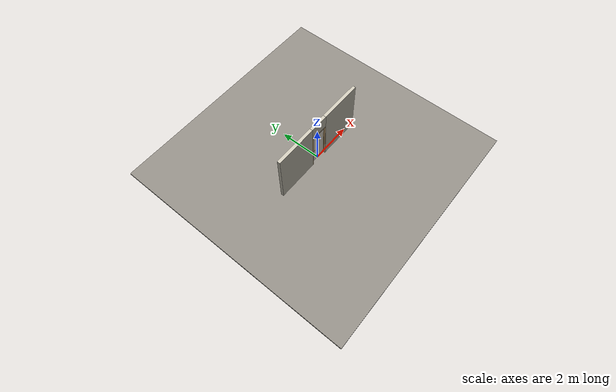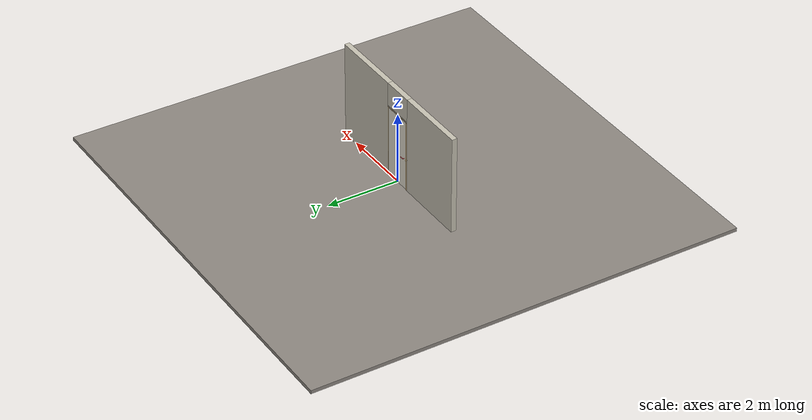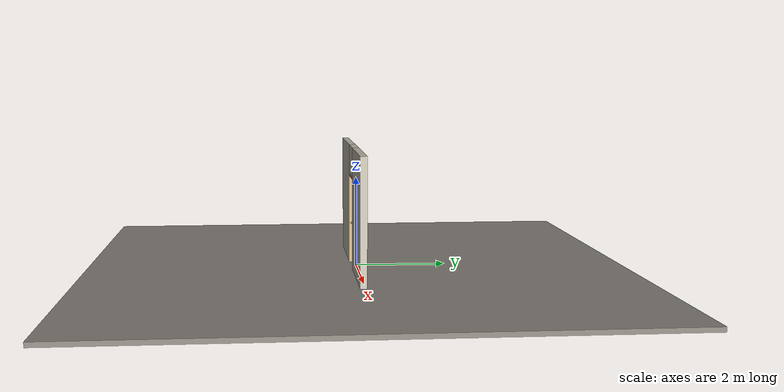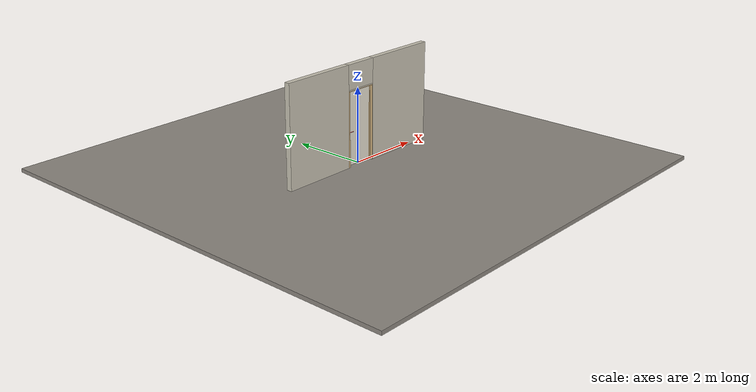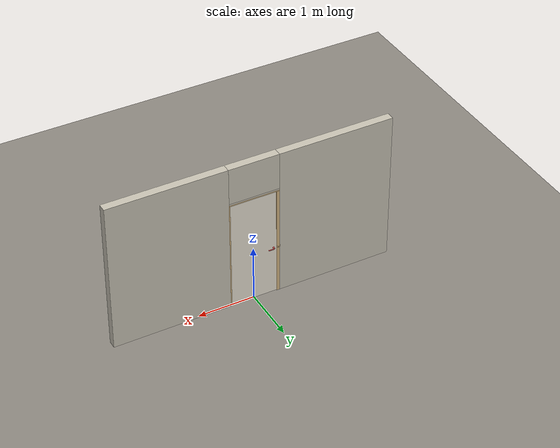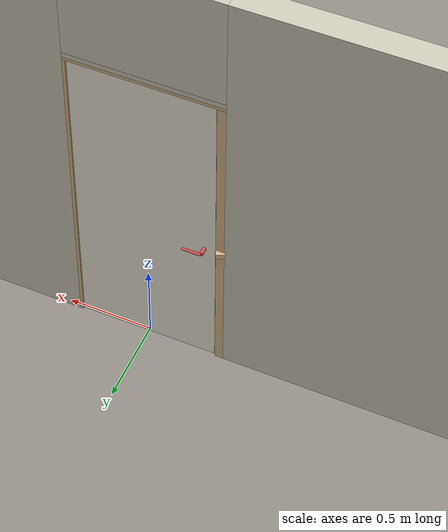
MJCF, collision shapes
<?xml version="1.0" ?>
<mujoco model="db0606_swing_single_simple">
  <compiler angle="radian" meshdir="../../hardware" texturedir="../../textures" autolimits="true" inertiafromgeom="false"/>
  <option timestep="0.002" integrator="implicitfast" cone="elliptic" impratio="10" noslip_iterations="3">
    <flag multiccd="enable"/>
  </option>
  <size memory="16M"/>
  <default>
    <geom condim="4" solref="0.005 1" solimp="0.95 0.99 0.001"/>
    <joint solreflimit="0.005 1" solimplimit="0.95 0.99 0.001"/>
    <tendon solreflimit="0.005 1"/>
    <equality solref="0.002 1"/>
  </default>
  <visual>
    <headlight ambient="0.4 0.4 0.4" diffuse="0.7 0.7 0.7" specular="0.2 0.2 0.2"/>
    <quality shadowsize="4096"/>
    <map znear="0.01" zfar="60"/>
  </visual>
  <asset>
    <mesh name="hinge_96510cf394" file="hinge_96510cf394.obj"/>
    <mesh name="hinge_jamb_7fd4ca52b2" file="hinge_jamb_7fd4ca52b2.obj"/>
    <mesh name="lever_748f08efca" file="lever_748f08efca.obj"/>
    <material name="mat_floor" rgba="0.55 0.53 0.5 1" specular="0.2" shininess="0.15" reflectance="0"/>
    <material name="mat_wall" rgba="0.78 0.76 0.7 1" specular="0.2" shininess="0.1" reflectance="0"/>
    <material name="mat_leaf" rgba="0.9 0.88 0.82 1" specular="0.2" shininess="0.58" reflectance="0"/>
    <material name="mat_leaf_louver" rgba="0.765 0.748 0.697 1" specular="0.2" shininess="0.4" reflectance="0"/>
    <material name="mat_hinge" rgba="0.65 0.66 0.68 1" specular="0.74" shininess="0.5" reflectance="0.36"/>
    <material name="mat_op_chrome" rgba="0.9 0.9 0.92 1" specular="0.8" shininess="0.9" reflectance="0.4"/>
    <material name="mat_trim" rgba="0.85 0.66 0.3 1" specular="0.8" shininess="0.75" reflectance="0.4"/>
    <material name="mat_bolt" rgba="0.85 0.66 0.3 1" specular="0.8" shininess="0.75" reflectance="0.4"/>
    <material name="mat_frame" rgba="0.82 0.7 0.5 1" specular="0.2" shininess="0.45" reflectance="0"/>
    <texture name="skybox" type="skybox" builtin="gradient" rgb1="0.6 0.7 0.85" rgb2="0.9 0.92 0.95" width="256" height="256"/>
  </asset>
  <worldbody>
    <light name="sun" pos="1.5 -2.5 4" dir="-0.3 0.5 -0.8" directional="true" diffuse="0.8 0.8 0.8" specular="0.3 0.3 0.3" castshadow="true"/>
    <light name="fill" pos="-1.5 2.5 3" dir="0.3 -0.5 -0.7" directional="true" diffuse="0.35 0.35 0.4" castshadow="false"/>
    <camera name="robot_view" pos="0 -2.546125 1.698475" xyaxes="1 0 0 0 0.26963 0.962964" fovy="52"/>
    <camera name="far_view" pos="0 2.450125 1.698475" xyaxes="-1 0 0 0 -0.26963 0.962964" fovy="52"/>
    <camera name="iso" pos="-1.898575 -2.146425 2.098175" xyaxes="0.741536 -0.670913 0 0.242917 0.268487 0.932151" fovy="46"/>
    <camera name="detail_handle" pos="-0.0764 -0.8725 1.194" xyaxes="0.97561 0.219512 0 -0.070934 0.315262 0.94635" fovy="38"/>
    <geom name="floor" type="box" size="6 6 0.05" pos="0 0 -0.05" material="mat_floor" group="0" contype="1" conaffinity="1" friction="0.8 0.005 0.0001" density="2400"/>
    <geom name="wall_left" type="box" size="1.0205 0.0725 1.35" pos="-1.4795 -0.048 1.35" material="mat_wall" group="0" contype="1" conaffinity="1" friction="0.6 0.005 0.0001" density="800"/>
    <geom name="wall_right" type="box" size="1.0355 0.0725 1.35" pos="1.4645 -0.048 1.35" material="mat_wall" group="0" contype="1" conaffinity="1" friction="0.6 0.005 0.0001" density="800"/>
    <geom name="wall_header" type="box" size="0.444 0.0725 0.3265" pos="-0.015 -0.048 2.3735" material="mat_wall" group="0" contype="1" conaffinity="1" friction="0.6 0.005 0.0001" density="800"/>
    <geom name="hinge_0_jamb" type="mesh" mesh="hinge_jamb_7fd4ca52b2" pos="0.407 0.0245 0.259" quat="0 0 0 1" material="mat_hinge" group="1" contype="0" conaffinity="0" density="7850"/>
    <geom name="hinge_1_jamb" type="mesh" mesh="hinge_jamb_7fd4ca52b2" pos="0.407 0.0245 1.0015" quat="0 0 0 1" material="mat_hinge" group="1" contype="0" conaffinity="0" density="7850"/>
    <geom name="hinge_2_jamb" type="mesh" mesh="hinge_jamb_7fd4ca52b2" pos="0.407 0.0245 1.814" quat="0 0 0 1" material="mat_hinge" group="1" contype="0" conaffinity="0" density="7850"/>
    <geom name="jamb_hinge" type="box" size="0.0095 0.0725 0.999" pos="0.4195 -0.048 0.999" material="mat_frame" group="0" contype="1" conaffinity="1" friction="0.6 0.005 0.0001" density="400"/>
    <geom name="strike_914_wall_n" type="box" size="0.0245 0.056325 0.0167" pos="-0.4345 -0.064175 0.914" material="mat_frame" group="0" contype="1" conaffinity="1" friction="0.6 0.005 0.0001" density="400"/>
    <geom name="strike_914_wall_p" type="box" size="0.0245 0.008 0.0167" pos="-0.4345 0.01585 0.914" material="mat_frame" group="0" contype="1" conaffinity="1" friction="0.6 0.005 0.0001" density="400"/>
    <geom name="strike_914_ramp" type="box" size="0.0245 0.01649 0.0167" pos="-0.439136 0.028673 0.914" quat="0.977148 0 0 0.212558" material="mat_frame" group="0" contype="1" conaffinity="1" friction="0.12 0.005 0.0001" density="400"/>
    <geom name="strike_914_back" type="box" size="0.01615 0.00785 0.0167" pos="-0.44285 0 0.914" material="mat_frame" group="0" contype="1" conaffinity="1" friction="0.6 0.005 0.0001" density="400"/>
    <geom name="jamb_strike_0" type="box" size="0.0245 0.0725 0.44865" pos="-0.4345 -0.048 0.44865" material="mat_frame" group="0" contype="1" conaffinity="1" friction="0.6 0.005 0.0001" density="400"/>
    <geom name="jamb_strike_1" type="box" size="0.0245 0.0725 0.53365" pos="-0.4345 -0.048 1.46435" material="mat_frame" group="0" contype="1" conaffinity="1" friction="0.6 0.005 0.0001" density="400"/>
    <geom name="jamb_head" type="box" size="0.444 0.0725 0.0095" pos="-0.015 -0.048 2.0075" material="mat_frame" group="0" contype="1" conaffinity="1" friction="0.6 0.005 0.0001" density="400"/>
    <geom name="head_stud" type="box" size="0.444 0.0725 0.015" pos="-0.015 -0.048 2.032" material="mat_wall" group="0" contype="1" conaffinity="1" friction="0.6 0.005 0.0001" density="500"/>
    <geom name="stop_hinge" type="box" size="0.0055 0.016 0.999" pos="0.4045 -0.034 0.999" material="mat_frame" group="0" contype="1" conaffinity="1" friction="0.6 0.005 0.0001" density="400"/>
    <geom name="stop_strike" type="box" size="0.0055 0.016 0.999" pos="-0.4045 -0.034 0.999" material="mat_frame" group="0" contype="1" conaffinity="1" friction="0.6 0.005 0.0001" density="400"/>
    <geom name="stop_head" type="box" size="0.41 0.016 0.0055" pos="0 -0.034 1.9925" material="mat_frame" group="0" contype="1" conaffinity="1" friction="0.6 0.005 0.0001" density="400"/>
    <site name="approach_point" pos="0 -1.5 0" quat="1 0 0 0" size="0.05" rgba="0.2 0.9 0.2 0.5" group="4"/>
    <site name="goal_point" pos="0 1.5 0" quat="1 0 0 0" size="0.05" rgba="0.2 0.9 0.2 0.5" group="4"/>
    <site name="door_plane_center" pos="0 0 0.999" quat="1 0 0 0" size="0.02" rgba="0.2 0.9 0.2 0.5" group="4"/>
    <body name="leaf" pos="0.41 0 0">
      <inertial pos="-0.396924 0.000468 1.002153" mass="12.935072" quat="0.499524 0.501086 -0.498897 0.50049" diaginertia="0.759063423 4.275768041 5.031983435"/>
      <joint name="leaf_hinge" type="hinge" axis="0 0 -1" pos="-0.003 0.0245 0" limited="true" range="0 1.745329" damping="0.206618" frictionloss="6.2112" armature="0.02"/>
      <geom name="leaf_slab" type="box" size="0.4065 0.0175 0.9925" pos="-0.4095 0 1.0015" material="mat_leaf" group="0" contype="1" conaffinity="1" friction="0.35 0.005 0.0001" density="1"/>
      <geom name="hinge_0" type="mesh" mesh="hinge_96510cf394" pos="-0.003 0.0245 0.259" quat="0 0 0 1" material="mat_hinge" group="1" contype="0" conaffinity="0" density="7850"/>
      <geom name="hinge_1" type="mesh" mesh="hinge_96510cf394" pos="-0.003 0.0245 1.0015" quat="0 0 0 1" material="mat_hinge" group="1" contype="0" conaffinity="0" density="7850"/>
      <geom name="hinge_2" type="mesh" mesh="hinge_96510cf394" pos="-0.003 0.0245 1.814" quat="0 0 0 1" material="mat_hinge" group="1" contype="0" conaffinity="0" density="7850"/>
      <geom name="leaf_latch_bolt_faceplate" type="box" size="0.0006 0.01235 0.0267" pos="-0.8154 0 0.914" material="mat_bolt" group="1" contype="0" conaffinity="0" density="8500"/>
      <site name="leaf_edge_mid" pos="-0.816 0 0.9925" quat="1 0 0 0" size="0.02" rgba="0.2 0.9 0.2 0.5" group="4"/>
      <body name="leaf_handle" pos="-0.756 0 0.914">
        <inertial pos="0.025809 0 0" mass="0.794529" quat="0.707107 0 0 -0.707107" diaginertia="0.001153119 0.002805212 0.00382246"/>
        <joint name="leaf_handle_hinge" type="hinge" axis="0 1 0" limited="true" range="0 0.87" damping="0.205084" frictionloss="0.04" stiffness="0.9" springref="-0.444444" armature="0.01"/>
        <geom name="leaf_handle_lever_n" type="mesh" mesh="lever_748f08efca" pos="0 -0.0175 0" quat="0 0 -0.707107 0.707107" material="mat_op_chrome" group="1" contype="0" conaffinity="0" density="3000"/>
        <geom name="leaf_handle_lever_col_n" type="capsule" size="0.008 0.048" pos="0.056 -0.0725 0" quat="0.707107 0 0.707107 0" material="mat_op_chrome" group="3" contype="1" conaffinity="1" rgba="0.8 0.3 0.3 0.25" friction="0.7 0.01 0.0001" density="3000"/>
        <geom name="leaf_handle_hub_col_n" type="cylinder" size="0.012 0.022" pos="0 -0.0475 0" quat="0.707107 -0.707107 0 0" material="mat_op_chrome" group="3" contype="1" conaffinity="1" rgba="0.8 0.3 0.3 0.25" friction="0.6 0.005 0.0001" density="3000"/>
        <geom name="leaf_handle_lever_p" type="mesh" mesh="lever_748f08efca" pos="0 0.0175 0" quat="0 0 0.707107 0.707107" material="mat_op_chrome" group="1" contype="0" conaffinity="0" density="3000"/>
        <geom name="leaf_handle_lever_col_p" type="capsule" size="0.008 0.048" pos="0.056 0.0725 0" quat="0.707107 0 0.707107 0" material="mat_op_chrome" group="3" contype="1" conaffinity="1" rgba="0.8 0.3 0.3 0.25" friction="0.7 0.01 0.0001" density="3000"/>
        <geom name="leaf_handle_hub_col_p" type="cylinder" size="0.012 0.022" pos="0 0.0475 0" quat="0.707107 -0.707107 0 0" material="mat_op_chrome" group="3" contype="1" conaffinity="1" rgba="0.8 0.3 0.3 0.25" friction="0.6 0.005 0.0001" density="3000"/>
        <site name="leaf_handle_grip_n" pos="0.0896 -0.0725 0" quat="1 0 0 0" size="0.012" rgba="0.2 0.9 0.2 0.5" group="4"/>
        <site name="leaf_handle_grip_p" pos="0.0896 0.0725 0" quat="1 0 0 0" size="0.012" rgba="0.2 0.9 0.2 0.5" group="4"/>
      </body>
      <body name="leaf_latch_bolt" pos="-0.816 0 0.914">
        <inertial pos="0.00865 0 0" mass="0.041419" quat="0.92388 0.382683 0 0" diaginertia="0.000000798 0.000005598 0.000005598"/>
        <joint name="leaf_latch_bolt_slide" type="slide" axis="1 0 0" limited="true" range="0 0.0127" damping="2" frictionloss="0.3" stiffness="300" springref="-0.008333" armature="0.1"/>
        <geom name="leaf_latch_bolt_capsule" type="capsule" size="0.00635 0.015" pos="0.00865 0 0" quat="0.707107 0 -0.707107 0" material="mat_bolt" group="0" contype="1" conaffinity="1" friction="0.2 0.005 0.0001" density="8500"/>
      </body>
    </body>
  </worldbody>
  <tendon>
    <fixed name="leaf_latch_bolt_coupling" limited="true" range="0 10">
      <joint joint="leaf_latch_bolt_slide" coef="1"/>
      <joint joint="leaf_handle_hinge" coef="-0.016076"/>
    </fixed>
  </tendon>
  <sensor>
    <jointpos name="leaf_hinge_pos" joint="leaf_hinge"/>
    <jointvel name="leaf_hinge_vel" joint="leaf_hinge"/>
    <jointpos name="leaf_handle_hinge_pos" joint="leaf_handle_hinge"/>
    <jointvel name="leaf_handle_hinge_vel" joint="leaf_handle_hinge"/>
    <jointpos name="leaf_latch_bolt_slide_pos" joint="leaf_latch_bolt_slide"/>
    <jointvel name="leaf_latch_bolt_slide_vel" joint="leaf_latch_bolt_slide"/>
  </sensor>
</mujoco>
